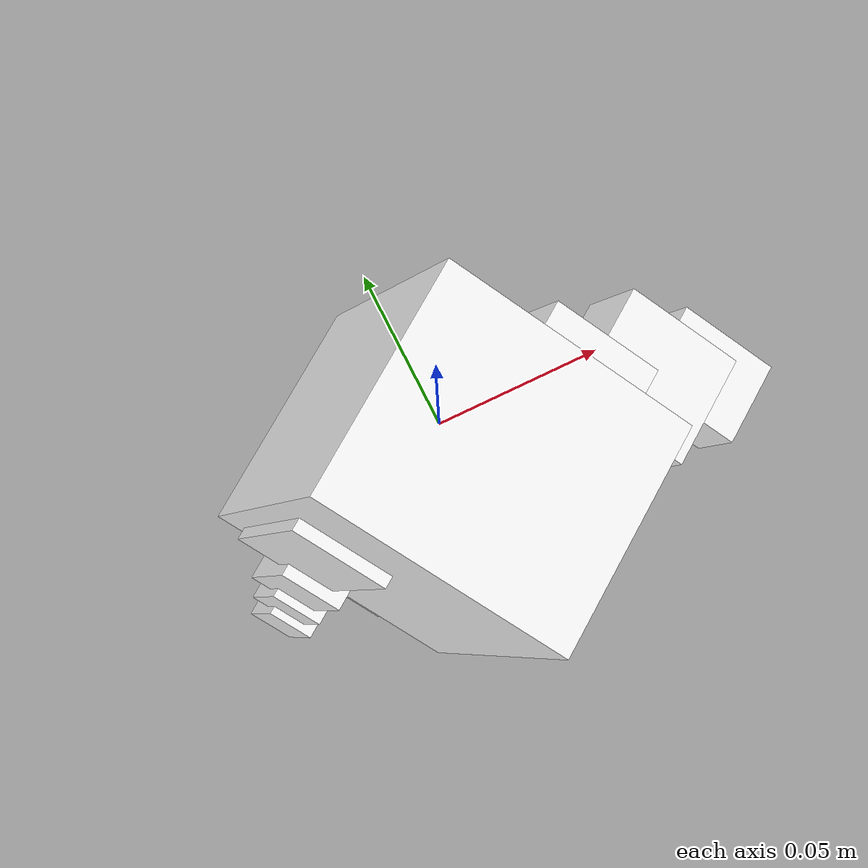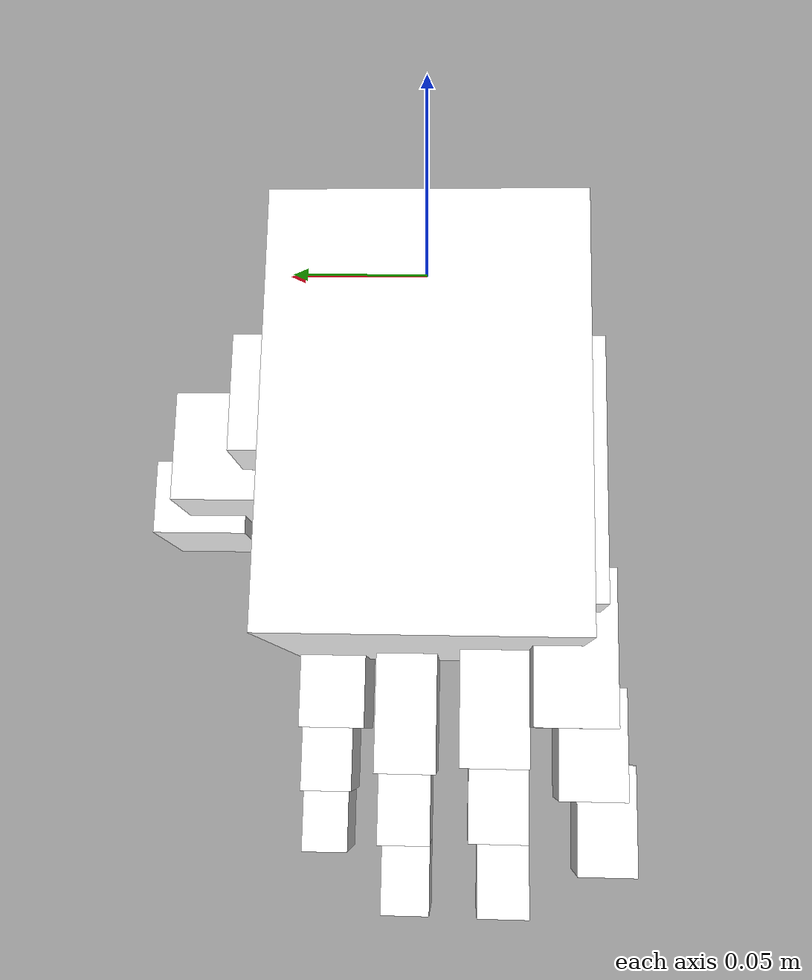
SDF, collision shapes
<sdf version='1.11'>
  <model name='inmoov_left_hand'>
    <link name='base_link'>
      <inertial>
        <pose>-0.0033297042670413961 -0.00040801143040921397 -0.048692568106860588 0 0 0</pose>
        <mass>0.092000000000000012</mass>
        <inertia>
          <ixx>0.0001341459242985756</ixx>
          <ixy>8.1465870568233462e-06</ixy>
          <ixz>-8.5491873010094485e-06</ixz>
          <iyy>0.00013559856511668041</iyy>
          <iyz>9.7497977244609943e-06</iyz>
          <izz>0.0001071791027620021</izz>
        </inertia>
      </inertial>
      <collision name='base_link_fixed_joint_lump__i01.leftHand.Wristlarge.001_collision_collision'>
        <pose>-0.000397 -0.00097099999999999997 -0.046913999999999997 0.41604999999999986 -1.3877787807814457e-17 0.61610999999999982</pose>
        <geometry>
          <box>
            <size>0.078636999999999999 0.087923000000000001 0.10924200000000001</size>
          </box>
        </geometry>
      </collision>
      <collision name='base_link_fixed_joint_lump__i01.leftHand.WristSmall2_collision_collision_1'>
        <pose>-0.033374074554559867 0.0043176415522776469 -0.051043017742331567 0.41605759855802188 4.6529931620771492e-06 0.61610378807990474</pose>
        <geometry>
          <box>
            <size>0.039386999999999998 0.032898999999999998 0.065855999999999998</size>
          </box>
        </geometry>
      </collision>
      <collision name='base_link_fixed_joint_lump__i01.leftHand.WristSmall_collision_collision_2'>
        <pose>-0.01238805754007488 0.0023728498481144062 -0.070056359896197504 0.41605759855802188 4.6529931620771492e-06 0.61610378807990474</pose>
        <geometry>
          <box>
            <size>0.03884 0.032813000000000002 0.055440000000000003</size>
          </box>
        </geometry>
      </collision>
      <visual name='base_link_fixed_joint_lump__i01.leftHand.Wristlarge.001_visual'>
        <pose>-0.41471999999999998 0.24146200000000001 -0.69721299999999997 0.41604999999999986 -1.3877787807814457e-17 0.61610999999999982</pose>
        <geometry>
          <mesh>
            <scale>0.10000000000000001 0.10000000000000001 0.10000000000000001</scale>
            <uri>meshes/Texture.235.stl</uri>
          </mesh>
        </geometry>
        <material>
          <diffuse>1 1 1 1</diffuse>
          <ambient>1 1 1 1</ambient>
        </material>
      </visual>
      <visual name='base_link_fixed_joint_lump__i01.leftHand.WristSmall2_visual_1'>
        <pose>-0.41472058572314979 0.24145943803352771 -0.69721345479682117 0.41605759855802188 4.6529931620771492e-06 0.61610378807990474</pose>
        <geometry>
          <mesh>
            <scale>0.10000000000000001 0.10000000000000001 0.10000000000000001</scale>
            <uri>meshes/Texture.041.stl</uri>
          </mesh>
        </geometry>
        <material>
          <diffuse>1 1 1 1</diffuse>
          <ambient>1 1 1 1</ambient>
        </material>
      </visual>
      <visual name='base_link_fixed_joint_lump__i01.leftHand.WristSmall_visual_2'>
        <pose>-0.41472061121750059 0.24145893227785689 -0.69721353789370699 0.41605759855802188 4.6529931620771492e-06 0.61610378807990474</pose>
        <geometry>
          <mesh>
            <scale>0.10000000000000001 0.10000000000000001 0.10000000000000001</scale>
            <uri>meshes/Texture.040.stl</uri>
          </mesh>
        </geometry>
        <material>
          <diffuse>1 1 1 1</diffuse>
          <ambient>1 1 1 1</ambient>
        </material>
      </visual>
    </link>
    <joint name='i01.leftHand.index_link_joint' type='revolute'>
      <pose relative_to='base_link'>0.032645 -0.001145 -0.094981999999999997 -1.56854 -0.090960000000000027 -0.0033000000000000113</pose>
      <parent>base_link</parent>
      <child>i01.leftHand.index_link</child>
      <axis>
        <xyz>-0.99994000000000005 0 0.01111</xyz>
        <limit>
          <lower>0</lower>
          <upper>1.5708</upper>
          <effort>2</effort>
          <velocity>0.78539999999999999</velocity>
        </limit>
        <dynamics>
          <spring_reference>0</spring_reference>
          <spring_stiffness>0</spring_stiffness>
        </dynamics>
      </axis>
    </joint>
    <link name='i01.leftHand.index_link'>
      <pose relative_to='i01.leftHand.index_link_joint'>0 0 0 0 0 0</pose>
      <inertial>
        <pose>-0.000834 0.017103 0.001469 1.9840899999999995 -0.61920000000000019 0.092560000000000128</pose>
        <mass>0.012</mass>
        <inertia>
          <ixx>3.196e-06</ixx>
          <ixy>0</ixy>
          <ixz>0</ixz>
          <iyy>2.5409999999999999e-06</iyy>
          <iyz>0</iyz>
          <izz>1.384e-06</izz>
        </inertia>
      </inertial>
      <collision name='i01.leftHand.index_link_fixed_joint_lump__i01.leftHand.indexPhal1_collision_collision'>
        <pose>-0.000834 0.017103 0.001469 1.9840899999999995 -0.61920000000000019 0.092560000000000128</pose>
        <geometry>
          <box>
            <size>0.019095999999999998 0.031926000000000003 0.046653</size>
          </box>
        </geometry>
      </collision>
      <visual name='i01.leftHand.index_link_fixed_joint_lump__i01.leftHand.indexPhal1_visual'>
        <pose>-0.50101300000000004 0.55957800000000002 0.23986299999999999 1.9840899999999995 -0.61920000000000019 0.092560000000000128</pose>
        <geometry>
          <mesh>
            <scale>0.10000000000000001 0.10000000000000001 0.10000000000000001</scale>
            <uri>meshes/Texture.018.stl</uri>
          </mesh>
        </geometry>
        <material>
          <diffuse>1 1 1 1</diffuse>
          <ambient>1 1 1 1</ambient>
        </material>
      </visual>
    </link>
    <joint name='i01.leftHand.index2_link_joint' type='revolute'>
      <pose relative_to='i01.leftHand.index_link'>0.00025799999999999998 0.034105000000000003 0.00068499999999999995 0 0 0</pose>
      <parent>i01.leftHand.index_link</parent>
      <child>i01.leftHand.index2_link</child>
      <axis>
        <xyz>-0.99994000000000005 0 0.01111</xyz>
        <mimic joint='i01.leftHand.index_link_joint'>
          <multiplier>1</multiplier>
          <offset>0</offset>
          <reference>0</reference>
        </mimic>
        <limit>
          <lower>0</lower>
          <upper>1.5708</upper>
          <effort>0</effort>
          <velocity>0.78539999999999999</velocity>
        </limit>
        <dynamics>
          <spring_reference>0</spring_reference>
          <spring_stiffness>0</spring_stiffness>
        </dynamics>
      </axis>
    </joint>
    <link name='i01.leftHand.index2_link'>
      <pose relative_to='i01.leftHand.index2_link_joint'>0 0 0 0 0 0</pose>
      <inertial>
        <pose>-0.00088500000000000004 0.011586000000000001 0.0017359999999999999 1.9840899999999995 -0.61920000000000019 0.092560000000000128</pose>
        <mass>0.0080000000000000002</mass>
        <inertia>
          <ixx>1.1650000000000001e-06</ixx>
          <ixy>0</ixy>
          <ixz>0</ixz>
          <iyy>8.8000000000000004e-07</iyy>
          <iyz>0</iyz>
          <izz>6.0299999999999999e-07</izz>
        </inertia>
      </inertial>
      <collision name='i01.leftHand.index2_link_fixed_joint_lump__i01.leftHand.indexPhal2_collision_collision'>
        <pose>-0.00088500000000000004 0.011586000000000001 0.0017359999999999999 1.9840899999999995 -0.61920000000000019 0.092560000000000128</pose>
        <geometry>
          <box>
            <size>0.015443 0.025801999999999999 0.032894</size>
          </box>
        </geometry>
      </collision>
      <visual name='i01.leftHand.index2_link_fixed_joint_lump__i01.leftHand.indexPhal2_visual'>
        <pose>-0.50127100000000002 0.525474 0.239178 1.9840899999999995 -0.61920000000000019 0.092560000000000128</pose>
        <geometry>
          <mesh>
            <scale>0.10000000000000001 0.10000000000000001 0.10000000000000001</scale>
            <uri>meshes/Texture.019.stl</uri>
          </mesh>
        </geometry>
        <material>
          <diffuse>1 1 1 1</diffuse>
          <ambient>1 1 1 1</ambient>
        </material>
      </visual>
    </link>
    <joint name='i01.leftHand.index3_link_joint' type='revolute'>
      <pose relative_to='i01.leftHand.index2_link'>0.000103 0.022696999999999998 0.00043300000000000001 0 0 0</pose>
      <parent>i01.leftHand.index2_link</parent>
      <child>i01.leftHand.index3_link</child>
      <axis>
        <xyz>-0.99994000000000005 0 0.01111</xyz>
        <mimic joint='i01.leftHand.index_link_joint'>
          <multiplier>1</multiplier>
          <offset>0</offset>
          <reference>0</reference>
        </mimic>
        <limit>
          <lower>0</lower>
          <upper>1.5708</upper>
          <effort>0</effort>
          <velocity>0.78539999999999999</velocity>
        </limit>
        <dynamics>
          <spring_reference>0</spring_reference>
          <spring_stiffness>0</spring_stiffness>
        </dynamics>
      </axis>
    </joint>
    <link name='i01.leftHand.index3_link'>
      <pose relative_to='i01.leftHand.index3_link_joint'>0 0 0 0 0 0</pose>
      <inertial>
        <pose>-0.000977 0.011587 0.000553 1.9840799999999998 -0.61919999999999986 0.092559999999999948</pose>
        <mass>0.0050000000000000001</mass>
        <inertia>
          <ixx>6.2900000000000003e-07</ixx>
          <ixy>0</ixy>
          <ixz>0</ixz>
          <iyy>4.8299999999999997e-07</iyy>
          <iyz>0</iyz>
          <izz>3.1399999999999998e-07</izz>
        </inertia>
      </inertial>
      <collision name='i01.leftHand.index3_link_fixed_joint_lump__i01.leftHand.indexPhal3_collision_collision'>
        <pose>-0.000977 0.011587 0.000553 1.9840799999999998 -0.61919999999999986 0.092559999999999948</pose>
        <geometry>
          <box>
            <size>0.014220999999999999 0.023494000000000001 0.030935000000000001</size>
          </box>
        </geometry>
      </collision>
      <visual name='i01.leftHand.index3_link_fixed_joint_lump__i01.leftHand.indexPhal3_visual'>
        <pose>-0.50137399999999999 0.50277700000000003 0.23874500000000001 1.9840799999999998 -0.61919999999999986 0.092559999999999948</pose>
        <geometry>
          <mesh>
            <scale>0.10000000000000001 0.10000000000000001 0.10000000000000001</scale>
            <uri>meshes/Texture.020.stl</uri>
          </mesh>
        </geometry>
        <material>
          <diffuse>1 1 1 1</diffuse>
          <ambient>1 1 1 1</ambient>
        </material>
      </visual>
    </link>
    <joint name='i01.leftHand.majeure_link_joint' type='revolute'>
      <pose relative_to='base_link'>0.0071609999999999998 -0.00117 -0.098880999999999997 -1.56854 0.0015999999999999999 -0.0030899999999999999</pose>
      <parent>base_link</parent>
      <child>i01.leftHand.majeure_link</child>
      <axis>
        <xyz>-0.99994000000000005 0 0.01111</xyz>
        <limit>
          <lower>0</lower>
          <upper>1.5708</upper>
          <effort>2</effort>
          <velocity>0.78539999999999999</velocity>
        </limit>
        <dynamics>
          <spring_reference>0</spring_reference>
          <spring_stiffness>0</spring_stiffness>
        </dynamics>
      </axis>
    </joint>
    <link name='i01.leftHand.majeure_link'>
      <pose relative_to='i01.leftHand.majeure_link_joint'>0 0 0 0 0 0</pose>
      <inertial>
        <pose>-0.00094300000000000004 0.018218999999999999 0.001438 1.984089999999999 -0.61920000000000031 0</pose>
        <mass>0.012</mass>
        <inertia>
          <ixx>3.4489999999999999e-06</ixx>
          <ixy>0</ixy>
          <ixz>0</ixz>
          <iyy>2.7209999999999999e-06</iyy>
          <iyz>0</iyz>
          <izz>1.3179999999999999e-06</izz>
        </inertia>
      </inertial>
      <collision name='i01.leftHand.majeure_link_fixed_joint_lump__i01.leftHand.majeurePhal1_collision_collision'>
        <pose>-0.00094300000000000004 0.018218999999999999 0.001438 1.9840899999999997 -0.61920000000000008 0</pose>
        <geometry>
          <box>
            <size>0.017181999999999999 0.031979 0.049252999999999998</size>
          </box>
        </geometry>
      </collision>
      <visual name='i01.leftHand.majeure_link_fixed_joint_lump__i01.leftHand.majeurePhal1_visual'>
        <pose>-0.42166900000000002 0.59955099999999995 0.23997499999999999 1.9840899999999997 -0.61920000000000008 0</pose>
        <geometry>
          <mesh>
            <scale>0.10000000000000001 0.10000000000000001 0.10000000000000001</scale>
            <uri>meshes/Texture.022.stl</uri>
          </mesh>
        </geometry>
        <material>
          <diffuse>1 1 1 1</diffuse>
          <ambient>1 1 1 1</ambient>
        </material>
      </visual>
    </link>
    <joint name='i01.leftHand.majeure2_link_joint' type='revolute'>
      <pose relative_to='i01.leftHand.majeure_link'>0.000272 0.035935000000000002 0.00072199999999999999 0 0 0</pose>
      <parent>i01.leftHand.majeure_link</parent>
      <child>i01.leftHand.majeure2_link</child>
      <axis>
        <xyz>-0.99994000000000005 0 0.01111</xyz>
        <mimic joint='i01.leftHand.majeure_link_joint'>
          <multiplier>1</multiplier>
          <offset>0</offset>
          <reference>0</reference>
        </mimic>
        <limit>
          <lower>0</lower>
          <upper>1.5708</upper>
          <effort>0</effort>
          <velocity>0.78539999999999999</velocity>
        </limit>
        <dynamics>
          <spring_reference>0</spring_reference>
          <spring_stiffness>0</spring_stiffness>
        </dynamics>
      </axis>
    </joint>
    <link name='i01.leftHand.majeure2_link'>
      <pose relative_to='i01.leftHand.majeure2_link_joint'>0 0 0 0 0 0</pose>
      <inertial>
        <pose>-0.00098700000000000003 0.012290000000000001 0.001647 1.984089999999999 -0.61920000000000031 0</pose>
        <mass>0.0080000000000000002</mass>
        <inertia>
          <ixx>1.26e-06</ixx>
          <ixy>0</ixy>
          <ixz>0</ixz>
          <iyy>9.5999999999999991e-07</iyy>
          <iyz>0</iyz>
          <izz>6.0900000000000001e-07</izz>
        </inertia>
      </inertial>
      <collision name='i01.leftHand.majeure2_link_fixed_joint_lump__i01.leftHand.majeurePhal2_collision_collision'>
        <pose>-0.00098700000000000003 0.012290000000000001 0.001647 1.9840899999999997 -0.61920000000000008 0</pose>
        <geometry>
          <box>
            <size>0.015219999999999999 0.026112 0.034757000000000003</size>
          </box>
        </geometry>
      </collision>
      <visual name='i01.leftHand.majeure2_link_fixed_joint_lump__i01.leftHand.majeurePhal2_visual'>
        <pose>-0.42194100000000001 0.56361600000000001 0.23925399999999999 1.9840899999999997 -0.61920000000000008 0</pose>
        <geometry>
          <mesh>
            <scale>0.10000000000000001 0.10000000000000001 0.10000000000000001</scale>
            <uri>meshes/Texture.023.stl</uri>
          </mesh>
        </geometry>
        <material>
          <diffuse>1 1 1 1</diffuse>
          <ambient>1 1 1 1</ambient>
        </material>
      </visual>
    </link>
    <joint name='i01.leftHand.majeure3_link_joint' type='revolute'>
      <pose relative_to='i01.leftHand.majeure2_link'>0.00010900000000000001 0.023914999999999999 0.00045600000000000003 0 0 0</pose>
      <parent>i01.leftHand.majeure2_link</parent>
      <child>i01.leftHand.majeure3_link</child>
      <axis>
        <xyz>-0.99994000000000005 0 0.01111</xyz>
        <mimic joint='i01.leftHand.majeure_link_joint'>
          <multiplier>1</multiplier>
          <offset>0</offset>
          <reference>0</reference>
        </mimic>
        <limit>
          <lower>0</lower>
          <upper>1.5708</upper>
          <effort>0</effort>
          <velocity>0.78539999999999999</velocity>
        </limit>
        <dynamics>
          <spring_reference>0</spring_reference>
          <spring_stiffness>0</spring_stiffness>
        </dynamics>
      </axis>
    </joint>
    <link name='i01.leftHand.majeure3_link'>
      <pose relative_to='i01.leftHand.majeure3_link_joint'>0 0 0 0 0 0</pose>
      <inertial>
        <pose>-0.00095299999999999996 0.012357 0.00063500000000000004 1.984089999999999 -0.61920000000000031 0</pose>
        <mass>0.0050000000000000001</mass>
        <inertia>
          <ixx>6.8599999999999998e-07</ixx>
          <ixy>0</ixy>
          <ixz>0</ixz>
          <iyy>5.3900000000000005e-07</iyy>
          <iyz>0</iyz>
          <izz>3.1699999999999999e-07</izz>
        </inertia>
      </inertial>
      <collision name='i01.leftHand.majeure3_link_fixed_joint_lump__i01.leftHand.majeurePhal3_collision_collision'>
        <pose>-0.00095299999999999996 0.012357 0.00063500000000000004 1.9840899999999997 -0.61920000000000008 0</pose>
        <geometry>
          <box>
            <size>0.01427 0.023619000000000001 0.033005</size>
          </box>
        </geometry>
      </collision>
      <visual name='i01.leftHand.majeure3_link_fixed_joint_lump__i01.leftHand.majeurePhal3_visual'>
        <pose>-0.42204999999999998 0.53969999999999996 0.23879800000000001 1.9840899999999997 -0.61920000000000008 0</pose>
        <geometry>
          <mesh>
            <scale>0.10000000000000001 0.10000000000000001 0.10000000000000001</scale>
            <uri>meshes/Texture.024.stl</uri>
          </mesh>
        </geometry>
        <material>
          <diffuse>1 1 1 1</diffuse>
          <ambient>1 1 1 1</ambient>
        </material>
      </visual>
    </link>
    <joint name='i01.leftHand.pinky_link_joint' type='revolute'>
      <pose relative_to='base_link'>-0.044412515794305482 0.0009943829330827064 -0.078430163233357636 -1.5684707828210771 0.25882726049538624 -0.0025028086037826433</pose>
      <parent>base_link</parent>
      <child>i01.leftHand.pinky_link</child>
      <axis>
        <xyz>-0.99994000000000005 0 0.01111</xyz>
        <limit>
          <lower>0</lower>
          <upper>1.5708</upper>
          <effort>2</effort>
          <velocity>0.78539999999999999</velocity>
        </limit>
        <dynamics>
          <spring_reference>0</spring_reference>
          <spring_stiffness>0</spring_stiffness>
        </dynamics>
      </axis>
    </joint>
    <link name='i01.leftHand.pinky_link'>
      <pose relative_to='i01.leftHand.pinky_link_joint'>0 0 0 0 0 0</pose>
      <inertial>
        <pose>-0.00014100000000000001 0.015448 0.0013209999999999999 1.9840899999999988 -0.61920000000000019 -0.25722</pose>
        <mass>0.012</mass>
        <inertia>
          <ixx>2.041e-06</ixx>
          <ixy>0</ixy>
          <ixz>0</ixz>
          <iyy>1.9910000000000001e-06</iyy>
          <iyz>0</iyz>
          <izz>9.1299999999999998e-07</izz>
        </inertia>
      </inertial>
      <collision name='i01.leftHand.pinky_link_fixed_joint_lump__i01.leftHand.pinkyPhal1_collision_collision'>
        <pose>-0.00014100000000000001 0.015448 0.0013209999999999999 1.9840899999999988 -0.61920000000000019 -0.25722</pose>
        <geometry>
          <box>
            <size>0.020775999999999999 0.021950000000000001 0.039489000000000003</size>
          </box>
        </geometry>
      </collision>
      <visual name='i01.leftHand.pinky_link_fixed_joint_lump__i01.leftHand.pinkyPhal1_visual'>
        <pose>-0.200181 0.69365900000000003 0.237926 1.9840899999999988 -0.61920000000000019 -0.25722</pose>
        <geometry>
          <mesh>
            <scale>0.10000000000000001 0.10000000000000001 0.10000000000000001</scale>
            <uri>meshes/Texture.027.stl</uri>
          </mesh>
        </geometry>
        <material>
          <diffuse>1 1 1 1</diffuse>
          <ambient>1 1 1 1</ambient>
        </material>
      </visual>
    </link>
    <joint name='i01.leftHand.pinky2_link_joint' type='revolute'>
      <pose relative_to='i01.leftHand.pinky_link'>0.00022499999999999999 0.029796 0.00059900000000000003 0 0 0</pose>
      <parent>i01.leftHand.pinky_link</parent>
      <child>i01.leftHand.pinky2_link</child>
      <axis>
        <xyz>-0.99994000000000005 0 0.01111</xyz>
        <mimic joint='i01.leftHand.pinky_link_joint'>
          <multiplier>1</multiplier>
          <offset>0</offset>
          <reference>0</reference>
        </mimic>
        <limit>
          <lower>0</lower>
          <upper>1.5708</upper>
          <effort>0</effort>
          <velocity>0.78539999999999999</velocity>
        </limit>
        <dynamics>
          <spring_reference>0</spring_reference>
          <spring_stiffness>0</spring_stiffness>
        </dynamics>
      </axis>
    </joint>
    <link name='i01.leftHand.pinky2_link'>
      <pose relative_to='i01.leftHand.pinky2_link_joint'>0 0 0 0 0 0</pose>
      <inertial>
        <pose>-0.00045100000000000001 0.010299000000000001 0.0012960000000000001 1.9840899999999997 -0.61920999999999993 -0.25721999999999995</pose>
        <mass>0.0080000000000000002</mass>
        <inertia>
          <ixx>7.4900000000000005e-07</ixx>
          <ixy>0</ixy>
          <ixz>0</ixz>
          <iyy>7.1900000000000002e-07</iyy>
          <iyz>0</iyz>
          <izz>4.27e-07</izz>
        </inertia>
      </inertial>
      <collision name='i01.leftHand.pinky2_link_fixed_joint_lump__i01.leftHand.pinkyPhal2_collision_collision'>
        <pose>-0.00045100000000000001 0.010299000000000001 0.0012960000000000001 1.9840899999999997 -0.61920999999999993 -0.25721999999999995</pose>
        <geometry>
          <box>
            <size>0.017252 0.018502999999999999 0.027951</size>
          </box>
        </geometry>
      </collision>
      <visual name='i01.leftHand.pinky2_link_fixed_joint_lump__i01.leftHand.pinkyPhal2_visual'>
        <pose>-0.200407 0.66386400000000001 0.23732700000000001 1.9840899999999997 -0.61920999999999993 -0.25721999999999995</pose>
        <geometry>
          <mesh>
            <scale>0.10000000000000001 0.10000000000000001 0.10000000000000001</scale>
            <uri>meshes/Texture.028.stl</uri>
          </mesh>
        </geometry>
        <material>
          <diffuse>1 1 1 1</diffuse>
          <ambient>1 1 1 1</ambient>
        </material>
      </visual>
    </link>
    <joint name='i01.leftHand.pinky3_link_joint' type='revolute'>
      <pose relative_to='i01.leftHand.pinky2_link'>9.0000000000000006e-05 0.01983 0.00037800000000000003 0 0 0</pose>
      <parent>i01.leftHand.pinky2_link</parent>
      <child>i01.leftHand.pinky3_link</child>
      <axis>
        <xyz>-0.99994000000000005 0 0.01111</xyz>
        <mimic joint='i01.leftHand.pinky_link_joint'>
          <multiplier>1</multiplier>
          <offset>0</offset>
          <reference>0</reference>
        </mimic>
        <limit>
          <lower>0</lower>
          <upper>1.5708</upper>
          <effort>0</effort>
          <velocity>0.78539999999999999</velocity>
        </limit>
        <dynamics>
          <spring_reference>0</spring_reference>
          <spring_stiffness>0</spring_stiffness>
        </dynamics>
      </axis>
    </joint>
    <link name='i01.leftHand.pinky3_link'>
      <pose relative_to='i01.leftHand.pinky3_link_joint'>0 0 0 0 0 0</pose>
      <inertial>
        <pose>-0.00024000000000000001 0.010493000000000001 0.000825 1.9840899999999988 -0.61920000000000019 -0.25722</pose>
        <mass>0.0050000000000000001</mass>
        <inertia>
          <ixx>4.2500000000000001e-07</ixx>
          <ixy>0</ixy>
          <ixz>0</ixz>
          <iyy>4.0499999999999999e-07</iyy>
          <iyz>0</iyz>
          <izz>2.0800000000000001e-07</izz>
        </inertia>
      </inertial>
      <collision name='i01.leftHand.pinky3_link_fixed_joint_lump__i01.leftHand.pinkyPhal3_collision_collision'>
        <pose>-0.00024000000000000001 0.010493000000000001 0.000825 1.9840899999999988 -0.61920000000000019 -0.25722</pose>
        <geometry>
          <box>
            <size>0.015006 0.016525999999999999 0.027323</size>
          </box>
        </geometry>
      </collision>
      <visual name='i01.leftHand.pinky3_link_fixed_joint_lump__i01.leftHand.pinkyPhal3_visual'>
        <pose>-0.20049700000000001 0.64403299999999997 0.23695099999999999 1.9840899999999988 -0.61920000000000019 -0.25722</pose>
        <geometry>
          <mesh>
            <scale>0.10000000000000001 0.10000000000000001 0.10000000000000001</scale>
            <uri>meshes/Texture.029.stl</uri>
          </mesh>
        </geometry>
        <material>
          <diffuse>1 1 1 1</diffuse>
          <ambient>1 1 1 1</ambient>
        </material>
      </visual>
    </link>
    <joint name='i01.leftHand.ringFinger_link_joint' type='revolute'>
      <pose relative_to='base_link'>-0.021770959654796151 -0.0004390715773596909 -0.090531975999321695 -1.568539428824169 0.088417705533687121 -0.0028987355556003248</pose>
      <parent>base_link</parent>
      <child>i01.leftHand.ringFinger_link</child>
      <axis>
        <xyz>-0.99994000000000005 0 0.01111</xyz>
        <limit>
          <lower>0</lower>
          <upper>1.5708</upper>
          <effort>2</effort>
          <velocity>0.78539999999999999</velocity>
        </limit>
        <dynamics>
          <spring_reference>0</spring_reference>
          <spring_stiffness>0</spring_stiffness>
        </dynamics>
      </axis>
    </joint>
    <link name='i01.leftHand.ringFinger_link'>
      <pose relative_to='i01.leftHand.ringFinger_link_joint'>0 0 0 0 0 0</pose>
      <inertial>
        <pose>-0.00058200000000000005 0.01746 0.0014760000000000001 1.9840899999999988 -0.61920000000000031 -0.086809999999999873</pose>
        <mass>0.012</mass>
        <inertia>
          <ixx>2.9869999999999999e-06</ixx>
          <ixy>0</ixy>
          <ixz>0</ixz>
          <iyy>2.4959999999999999e-06</iyy>
          <iyz>0</iyz>
          <izz>1.161e-06</izz>
        </inertia>
      </inertial>
      <collision name='i01.leftHand.ringFinger_link_fixed_joint_lump__i01.leftHand.ringFingerPhal1_collision_collision'>
        <pose>-0.00058200000000000005 0.01746 0.0014760000000000001 1.9840899999999988 -0.61920000000000031 -0.086809999999999873</pose>
        <geometry>
          <box>
            <size>0.018304000000000001 0.028745 0.046483999999999998</size>
          </box>
        </geometry>
      </collision>
      <visual name='i01.leftHand.ringFinger_link_fixed_joint_lump__i01.leftHand.ringFingerPhal1_visual'>
        <pose>-0.33853899999999998 0.63961400000000002 0.239315 1.9840899999999988 -0.61920000000000031 -0.086809999999999873</pose>
        <geometry>
          <mesh>
            <scale>0.10000000000000001 0.10000000000000001 0.10000000000000001</scale>
            <uri>meshes/Texture.032.stl</uri>
          </mesh>
        </geometry>
        <material>
          <diffuse>1 1 1 1</diffuse>
          <ambient>1 1 1 1</ambient>
        </material>
      </visual>
    </link>
    <joint name='i01.leftHand.ringfinger2_link_joint' type='revolute'>
      <pose relative_to='i01.leftHand.ringFinger_link'>0.00025799999999999998 0.034105000000000003 0.00068499999999999995 0 0 0</pose>
      <parent>i01.leftHand.ringFinger_link</parent>
      <child>i01.leftHand.ringfinger2_link</child>
      <axis>
        <xyz>-0.99994000000000005 0 0.01111</xyz>
        <mimic joint='i01.leftHand.ringFinger_link_joint'>
          <multiplier>1</multiplier>
          <offset>0</offset>
          <reference>0</reference>
        </mimic>
        <limit>
          <lower>0</lower>
          <upper>1.5708</upper>
          <effort>0</effort>
          <velocity>0.78539999999999999</velocity>
        </limit>
        <dynamics>
          <spring_reference>0</spring_reference>
          <spring_stiffness>0</spring_stiffness>
        </dynamics>
      </axis>
    </joint>
    <link name='i01.leftHand.ringfinger2_link'>
      <pose relative_to='i01.leftHand.ringfinger2_link_joint'>0 0 0 0 0 0</pose>
      <inertial>
        <pose>-0.00072099999999999996 0.011719 0.0015889999999999999 1.9840899999999995 -0.61920000000000008 -0.086819999999999842</pose>
        <mass>0.0080000000000000002</mass>
        <inertia>
          <ixx>1.093e-06</ixx>
          <ixy>0</ixy>
          <ixz>0</ixz>
          <iyy>8.9100000000000002e-07</iyy>
          <iyz>0</iyz>
          <izz>5.4600000000000005e-07</izz>
        </inertia>
      </inertial>
      <collision name='i01.leftHand.ringfinger2_link_fixed_joint_lump__i01.leftHand.ringFingerPhal2_collision_collision'>
        <pose>-0.00072099999999999996 0.011719 0.0015889999999999999 1.9840899999999995 -0.61920000000000008 -0.086819999999999842</pose>
        <geometry>
          <box>
            <size>0.016056000000000001 0.023687 0.032833000000000001</size>
          </box>
        </geometry>
      </collision>
      <visual name='i01.leftHand.ringfinger2_link_fixed_joint_lump__i01.leftHand.ringFingerPhal2_visual'>
        <pose>-0.33879700000000001 0.60550899999999996 0.23863200000000001 1.9840899999999995 -0.61920000000000008 -0.086819999999999842</pose>
        <geometry>
          <mesh>
            <scale>0.10000000000000001 0.10000000000000001 0.10000000000000001</scale>
            <uri>meshes/Texture.033.stl</uri>
          </mesh>
        </geometry>
        <material>
          <diffuse>1 1 1 1</diffuse>
          <ambient>1 1 1 1</ambient>
        </material>
      </visual>
    </link>
    <joint name='i01.leftHand.ringfinger3_link_joint' type='revolute'>
      <pose relative_to='i01.leftHand.ringfinger2_link'>0.000103 0.022696999999999998 0.00043300000000000001 0 0 0</pose>
      <parent>i01.leftHand.ringfinger2_link</parent>
      <child>i01.leftHand.ringfinger3_link</child>
      <axis>
        <xyz>-0.99994000000000005 0 0.01111</xyz>
        <mimic joint='i01.leftHand.ringFinger_link_joint'>
          <multiplier>1</multiplier>
          <offset>0</offset>
          <reference>0</reference>
        </mimic>
        <limit>
          <lower>0</lower>
          <upper>1.5708</upper>
          <effort>0</effort>
          <velocity>0.78539999999999999</velocity>
        </limit>
        <dynamics>
          <spring_reference>0</spring_reference>
          <spring_stiffness>0</spring_stiffness>
        </dynamics>
      </axis>
    </joint>
    <link name='i01.leftHand.ringfinger3_link'>
      <pose relative_to='i01.leftHand.ringfinger3_link_joint'>0 0 0 0 0 0</pose>
      <inertial>
        <pose>-0.00064999999999999997 0.011825 0.00077700000000000002 1.9840899999999995 -0.61920000000000008 -0.086819999999999842</pose>
        <mass>0.0050000000000000001</mass>
        <inertia>
          <ixx>6.0100000000000005e-07</ixx>
          <ixy>0</ixy>
          <ixz>0</ixz>
          <iyy>4.9599999999999999e-07</iyy>
          <iyz>0</iyz>
          <izz>2.7300000000000002e-07</izz>
        </inertia>
      </inertial>
      <collision name='i01.leftHand.ringfinger3_link_fixed_joint_lump__i01.leftHand.ringFingerPhal3_collision_collision'>
        <pose>-0.00064999999999999997 0.011825 0.00077700000000000002 1.9840899999999995 -0.61920000000000008 -0.086819999999999842</pose>
        <geometry>
          <box>
            <size>0.014171 0.021291999999999998 0.031451</size>
          </box>
        </geometry>
      </collision>
      <visual name='i01.leftHand.ringfinger3_link_fixed_joint_lump__i01.leftHand.ringFingerPhal3_visual'>
        <pose>-0.33889999999999998 0.582812 0.2382 1.9840899999999995 -0.61920000000000008 -0.086819999999999842</pose>
        <geometry>
          <mesh>
            <scale>0.10000000000000001 0.10000000000000001 0.10000000000000001</scale>
            <uri>meshes/Texture.034.stl</uri>
          </mesh>
        </geometry>
        <material>
          <diffuse>1 1 1 1</diffuse>
          <ambient>1 1 1 1</ambient>
        </material>
      </visual>
    </link>
    <joint name='i01.leftHand.thumb1_link_joint' type='revolute'>
      <pose relative_to='base_link'>0.028233999999999999 -1.9999999999999999e-06 -0.037339999999999998 1.5163499999999999 -0.098930000000000046 -0.0033199999999999736</pose>
      <parent>base_link</parent>
      <child>i01.leftHand.thumb1_link</child>
      <axis>
        <xyz>0 -0.99994000000000005 0.01111</xyz>
        <limit>
          <lower>0</lower>
          <upper>1.5708</upper>
          <effort>2</effort>
          <velocity>0.78539999999999999</velocity>
        </limit>
        <dynamics>
          <spring_reference>0</spring_reference>
          <spring_stiffness>0</spring_stiffness>
        </dynamics>
      </axis>
    </joint>
    <link name='i01.leftHand.thumb1_link'>
      <pose relative_to='i01.leftHand.thumb1_link_joint'>0 0 0 0 0 0</pose>
      <inertial>
        <pose>0.012134000000000001 -0.0025079999999999998 -0.003473 -1.0879700000000001 0.62375000000000014 -0.060040000000000079</pose>
        <mass>0.012</mass>
        <inertia>
          <ixx>2.6010000000000002e-06</ixx>
          <ixy>0</ixy>
          <ixz>0</ixz>
          <iyy>2.7130000000000001e-06</iyy>
          <iyz>0</iyz>
          <izz>3.056e-06</izz>
        </inertia>
      </inertial>
      <collision name='i01.leftHand.thumb1_link_fixed_joint_lump__i01.leftHand.ThumbBase_collision_collision'>
        <pose>0.012134000000000001 -0.0025079999999999998 -0.003473 -1.0879700000000001 0.62375000000000014 -0.060040000000000079</pose>
        <geometry>
          <box>
            <size>0.039801000000000003 0.038365000000000003 0.033597000000000002</size>
          </box>
        </geometry>
      </collision>
      <visual name='i01.leftHand.thumb1_link_fixed_joint_lump__i01.leftHand.ThumbBase_visual'>
        <pose>-0.50675899999999996 -0.59884700000000002 -0.27298600000000001 -1.0879700000000001 0.62375000000000014 -0.060040000000000079</pose>
        <geometry>
          <mesh>
            <scale>0.10000000000000001 0.10000000000000001 0.10000000000000001</scale>
            <uri>meshes/Texture.035.stl</uri>
          </mesh>
        </geometry>
        <material>
          <diffuse>1 1 1 1</diffuse>
          <ambient>1 1 1 1</ambient>
        </material>
      </visual>
    </link>
    <joint name='i01.leftHand.thumb_link_joint' type='revolute'>
      <pose relative_to='i01.leftHand.thumb1_link'>0.025977 -0.013332 -0.00080000000000000004 -0.031820000000000029 -0.32566000000000006 0.83064000000000027</pose>
      <parent>i01.leftHand.thumb1_link</parent>
      <child>i01.leftHand.thumb_link</child>
      <axis>
        <xyz>-0.99994000000000005 0 0.01111</xyz>
        <mimic joint='i01.leftHand.thumb1_link_joint'>
          <multiplier>1</multiplier>
          <offset>0</offset>
          <reference>0</reference>
        </mimic>
        <limit>
          <lower>0</lower>
          <upper>1.5708</upper>
          <effort>0</effort>
          <velocity>0.78539999999999999</velocity>
        </limit>
        <dynamics>
          <spring_reference>0</spring_reference>
          <spring_stiffness>0</spring_stiffness>
        </dynamics>
      </axis>
    </joint>
    <link name='i01.leftHand.thumb_link'>
      <pose relative_to='i01.leftHand.thumb_link_joint'>0 0 0 0 0 0</pose>
      <inertial>
        <pose>9.7e-05 -0.015823 -0.002722 -1.43268 0.82776000000000005 -1.1167</pose>
        <mass>0.012</mass>
        <inertia>
          <ixx>2.7839999999999999e-06</ixx>
          <ixy>0</ixy>
          <ixz>0</ixz>
          <iyy>2.5739999999999998e-06</iyy>
          <iyz>0</iyz>
          <izz>3.2009999999999999e-06</izz>
        </inertia>
      </inertial>
      <collision name='i01.leftHand.thumb_link_fixed_joint_lump__i01.leftHand.ThumbMid_collision_collision'>
        <pose>9.7e-05 -0.015823 -0.002722 -1.4326800000000002 0.82776000000000038 -1.1167000000000002</pose>
        <geometry>
          <box>
            <size>0.038671999999999998 0.041293000000000003 0.032843999999999998</size>
          </box>
        </geometry>
      </collision>
      <visual name='i01.leftHand.thumb_link_fixed_joint_lump__i01.leftHand.ThumbMid_visual'>
        <pose>-0.83707699999999996 -0.001374 -0.0046649999999999999 -1.4326800000000002 0.82776000000000038 -1.1167000000000002</pose>
        <geometry>
          <mesh>
            <scale>0.10000000000000001 0.10000000000000001 0.10000000000000001</scale>
            <uri>meshes/Texture.037.stl</uri>
          </mesh>
        </geometry>
        <material>
          <diffuse>1 1 1 1</diffuse>
          <ambient>1 1 1 1</ambient>
        </material>
      </visual>
    </link>
    <joint name='i01.leftHand.thumb3_link_joint' type='revolute'>
      <pose relative_to='i01.leftHand.thumb_link'>0.0012290000000000001 -0.033047 -0.00070399999999999998 1.0000000000000001e-05 0 0</pose>
      <parent>i01.leftHand.thumb_link</parent>
      <child>i01.leftHand.thumb3_link</child>
      <axis>
        <xyz>-0.99994000000000005 0 0.01111</xyz>
        <mimic joint='i01.leftHand.thumb1_link_joint'>
          <multiplier>1</multiplier>
          <offset>0</offset>
          <reference>0</reference>
        </mimic>
        <limit>
          <lower>0</lower>
          <upper>1.5708</upper>
          <effort>0</effort>
          <velocity>0.78539999999999999</velocity>
        </limit>
        <dynamics>
          <spring_reference>0</spring_reference>
          <spring_stiffness>0</spring_stiffness>
        </dynamics>
      </axis>
    </joint>
    <link name='i01.leftHand.thumb3_link'>
      <pose relative_to='i01.leftHand.thumb3_link_joint'>0 0 0 0 0 0</pose>
      <inertial>
        <pose>-0.0019729999999999999 -0.011150999999999999 -0.001137 -1.4326899999999998 0.82775999999999983 -1.1167100000000001</pose>
        <mass>0.0050000000000000001</mass>
        <inertia>
          <ixx>7.5499999999999997e-07</ixx>
          <ixy>0</ixy>
          <ixz>0</ixz>
          <iyy>5.7899999999999998e-07</iyy>
          <iyz>0</iyz>
          <izz>8.8700000000000004e-07</izz>
        </inertia>
      </inertial>
      <collision name='i01.leftHand.thumb3_link_fixed_joint_lump__i01.leftHand.ThumbTip_collision_collision'>
        <pose>-0.0019729999999999999 -0.011150999999999999 -0.001137 -1.4326899999999998 0.82775999999999983 -1.1167100000000001</pose>
        <geometry>
          <box>
            <size>0.029221 0.035715999999999998 0.023134999999999999</size>
          </box>
        </geometry>
      </collision>
      <visual name='i01.leftHand.thumb3_link_fixed_joint_lump__i01.leftHand.ThumbTip_visual'>
        <pose>-0.838306 0.031675000000000002 -0.0039569999999999996 -1.4326899999999998 0.82775999999999983 -1.1167100000000001</pose>
        <geometry>
          <mesh>
            <scale>0.10000000000000001 0.10000000000000001 0.10000000000000001</scale>
            <uri>meshes/Texture.038.stl</uri>
          </mesh>
        </geometry>
        <material>
          <diffuse>1 1 1 1</diffuse>
          <ambient>1 1 1 1</ambient>
        </material>
      </visual>
    </link>
    <frame name='i01.leftHand.pinky0_link_joint' attached_to='i01.leftHand.wrist.001_link'>
      <pose>-0.024001999999999999 0.000108 -0.035217999999999999 -1.56789 -0.68643000000000043 -0.0049400000000000242</pose>
    </frame>
    <frame name='i01.leftHand.pinky0_link' attached_to='i01.leftHand.pinky0_link_joint'>
      <pose>0 0 0 0 0 0</pose>
    </frame>
    <frame name='i01.leftHand.ringfinger0_link_joint' attached_to='i01.leftHand.wrist.001_link'>
      <pose>-0.0056730000000000001 0.000101 -0.057588 -1.56789 -0.68643000000000043 -0.0049400000000000242</pose>
    </frame>
    <frame name='i01.leftHand.ringfinger0_link' attached_to='i01.leftHand.ringfinger0_link_joint'>
      <pose>0 0 0 0 0 0</pose>
    </frame>
    <frame name='hand_mount_joint' attached_to='base_link'>
      <pose>0 0 0 0 0 0</pose>
    </frame>
    <frame name='i01.leftHand.wrist.001_link' attached_to='hand_mount_joint'>
      <pose>0 0 0 0 0 0</pose>
    </frame>
  </model>
</sdf>
